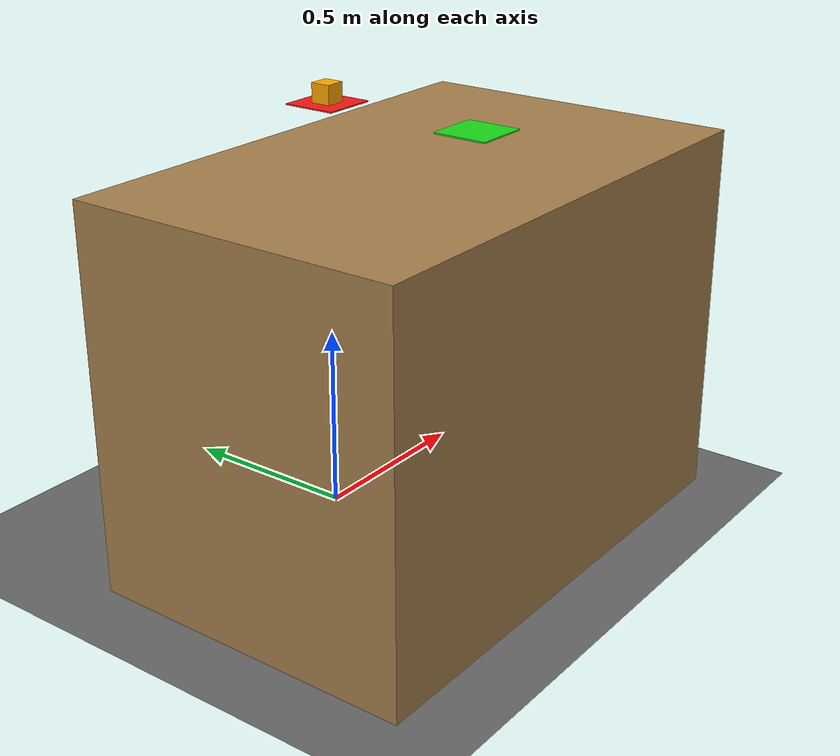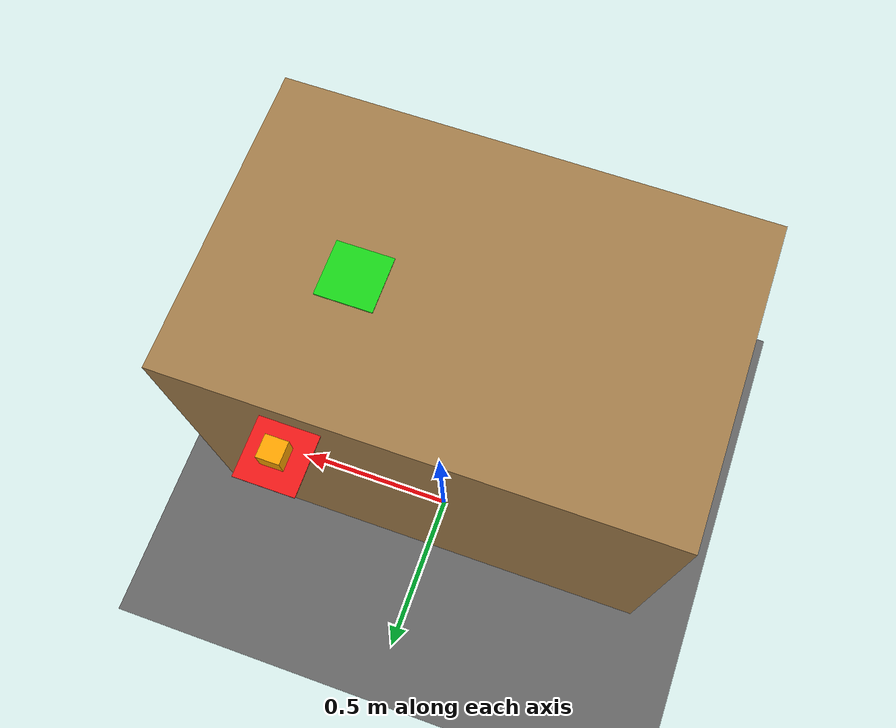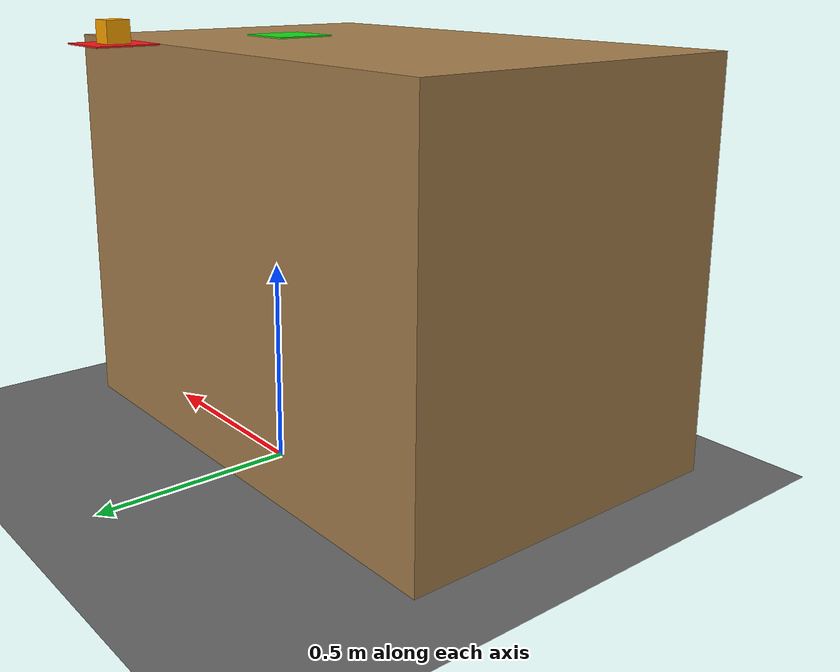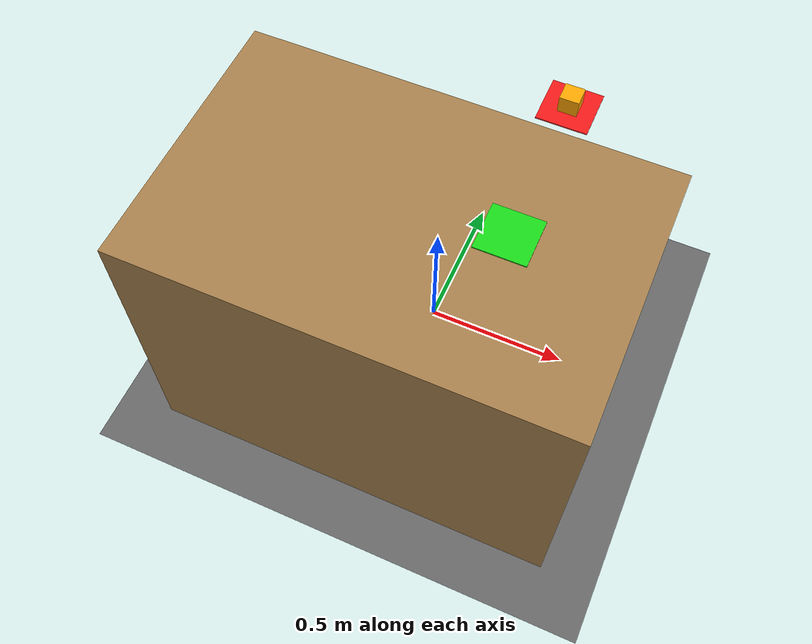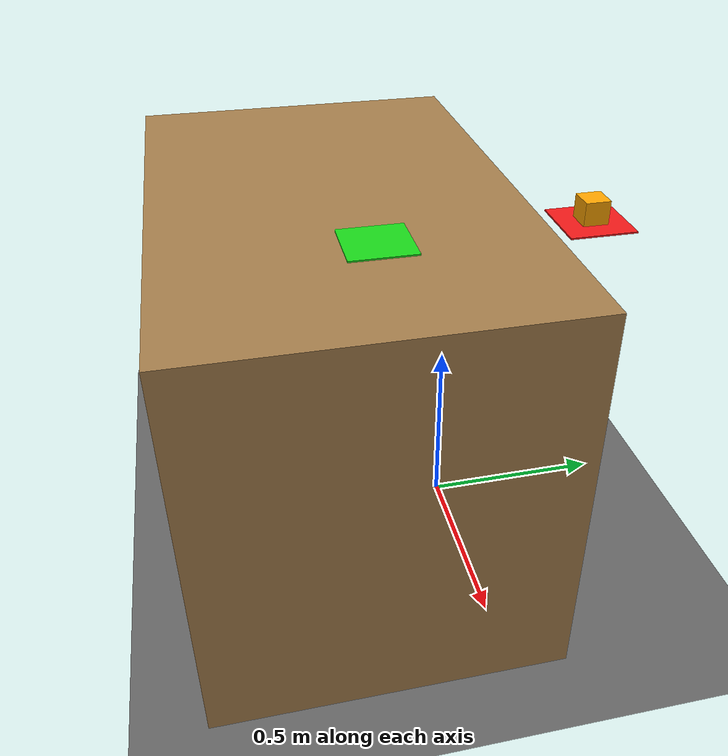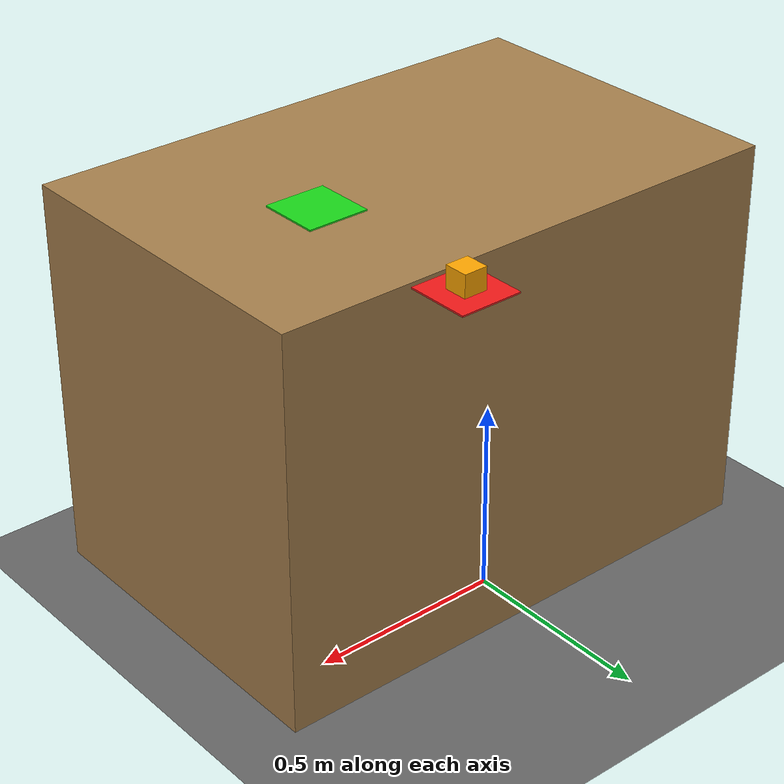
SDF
<?xml version="1.0" ?>
<sdf version="1.9">
  <world name="xarm5_demo">

    <!-- Required Gazebo Harmonic system plugins -->
    <plugin filename="gz-sim-physics-system"
            name="gz::sim::systems::Physics"/>
    <plugin filename="gz-sim-user-commands-system"
            name="gz::sim::systems::UserCommands"/>
    <plugin filename="gz-sim-scene-broadcaster-system"
            name="gz::sim::systems::SceneBroadcaster"/>
    <plugin filename="gz-sim-sensors-system"
            name="gz::sim::systems::Sensors">
      <render_engine>ogre2</render_engine>
    </plugin>
    <plugin filename="gz-sim-contact-system"
            name="gz::sim::systems::Contact"/>

    <!-- Lighting -->
    <light name="sun" type="directional">
      <cast_shadows>true</cast_shadows>
      <pose>0 0 10 0 0 0</pose>
      <diffuse>0.8 0.8 0.8 1</diffuse>
      <specular>0.2 0.2 0.2 1</specular>
      <direction>-0.5 0.1 -0.9</direction>
      <attenuation>
        <range>1000</range>
        <constant>0.9</constant>
        <linear>0.01</linear>
        <quadratic>0.001</quadratic>
      </attenuation>
    </light>

    <!-- Ground plane -->
    <model name="ground_plane">
      <static>true</static>
      <link name="link">
        <collision name="col">
          <geometry>
            <plane><normal>0 0 1</normal><size>20 20</size></plane>
          </geometry>
          <surface>
            <friction><ode><mu>1.0</mu><mu2>1.0</mu2></ode></friction>
          </surface>
        </collision>
        <visual name="vis">
          <geometry>
            <plane><normal>0 0 1</normal><size>20 20</size></plane>
          </geometry>
          <material>
            <ambient>0.35 0.35 0.35 1</ambient>
            <diffuse>0.4 0.4 0.4 1</diffuse>
          </material>
        </visual>
      </link>
    </model>

    <model name="work_table">
      <static>true</static>
      <pose>0 -0.3 0 0 0 0</pose>
      <link name="link">
        <collision name="col">
          <pose>0 0 0.5105 0 0 0</pose>
          <geometry>
            <box><size>1.4 0.9 1.021</size></box>
          </geometry>
        </collision>
        <visual name="vis">
          <pose>0 0 0.5105 0 0 0</pose>
          <geometry>
            <box><size>1.4 0.9 1.021</size></box>
          </geometry>
          <material>
            <ambient>0.55 0.40 0.25 1</ambient>
            <diffuse>0.65 0.50 0.30 1</diffuse>
            <specular>0.05 0.05 0.05 1</specular>
          </material>
        </visual>
      </link>
    </model>

    <model name="pick_zone">
      <static>true</static>
      <pose>0.30 0.25 1.023 0 0 0</pose>
      <link name="link">
        <visual name="vis">
          <geometry><box><size>0.16 0.16 0.004</size></box></geometry>
          <material>
            <ambient>0.85 0.08 0.08 0.9</ambient>
            <diffuse>0.95 0.10 0.10 0.9</diffuse>
          </material>
        </visual>
      </link>
    </model>

    <!--
      Place Zone Marker — GREEN flat pad on table surface (right / -Y)
      Robot-frame coordinates: x=0.30, y=-0.25, z=0.0
    -->
    <model name="place_zone">
      <static>true</static>
      <pose>0.30 -0.25 1.023 0 0 0</pose>
      <link name="link">
        <visual name="vis">
          <geometry><box><size>0.16 0.16 0.004</size></box></geometry>
          <material>
            <ambient>0.08 0.75 0.08 0.9</ambient>
            <diffuse>0.10 0.85 0.10 0.9</diffuse>
          </material>
        </visual>
      </link>
    </model>

    <model name="demo_cube">
      <static>false</static>
      <pose>0.30 0.25 1.051 0 0 0</pose>
      <link name="link">
        <inertial>
          <mass>0.15</mass>
          <inertia>
            <ixx>0.000038</ixx><ixy>0</ixy><ixz>0</ixz>
            <iyy>0.000038</iyy><iyz>0</iyz>
            <izz>0.000038</izz>
          </inertia>
        </inertial>
        <collision name="col">
          <geometry><box><size>0.06 0.06 0.06</size></box></geometry>
          <surface>
            <friction><ode><mu>0.8</mu><mu2>0.8</mu2></ode></friction>
          </surface>
        </collision>
        <visual name="vis">
          <geometry><box><size>0.06 0.06 0.06</size></box></geometry>
          <material>
            <ambient>0.95 0.55 0.0 1</ambient>
            <diffuse>1.0 0.65 0.0 1</diffuse>
            <specular>0.3 0.25 0.0 1</specular>
          </material>
        </visual>
      </link>
    </model>

  </world>
</sdf>
